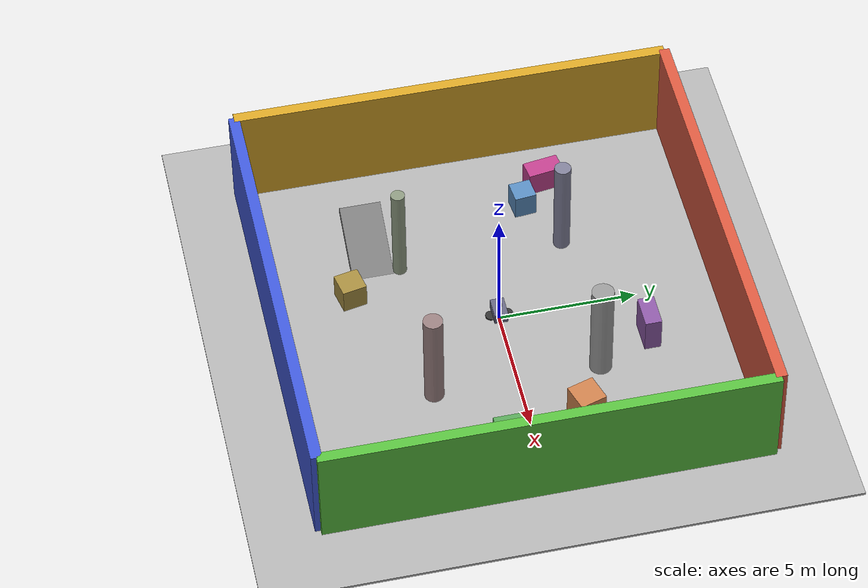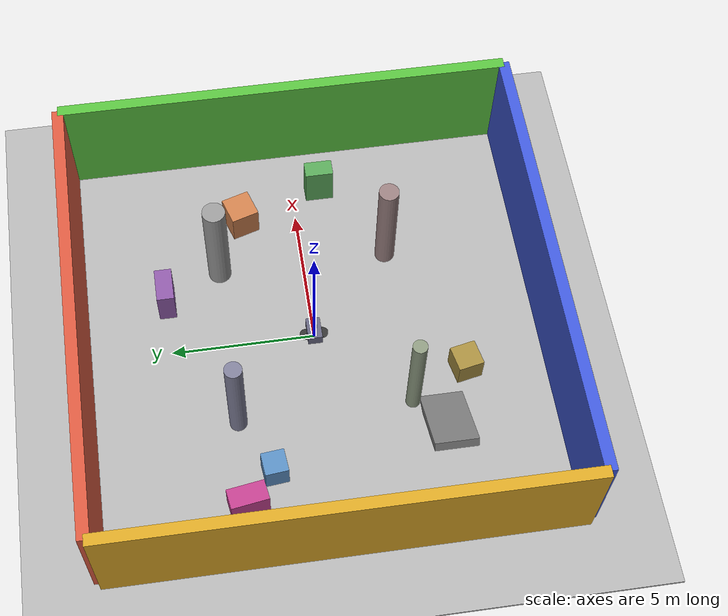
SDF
<?xml version="1.0" ?>
<sdf version="1.6">
  <world name="fastlio_world">

    <!-- ====== DART 真实物理 ====== -->
    <physics name="1ms" type="dart">
      <max_step_size>0.001</max_step_size>
      <real_time_factor>1.0</real_time_factor>
      <real_time_update_rate>1000</real_time_update_rate>
      <dart>
        <solver_type>dantzig</solver_type>
      </dart>
    </physics>

    <plugin filename="gz-sim-physics-system" name="gz::sim::systems::Physics"/>
    <plugin filename="gz-sim-sensors-system" name="gz::sim::systems::Sensors">
      <render_engine>ogre2</render_engine>
    </plugin>
    <plugin filename="gz-sim-scene-broadcaster-system" name="gz::sim::systems::SceneBroadcaster"/>
    <plugin filename="gz-sim-user-commands-system" name="gz::sim::systems::UserCommands"/>
    <plugin filename="gz-sim-imu-system" name="gz::sim::systems::Imu"/>

    <light type="directional" name="sun">
      <cast_shadows>true</cast_shadows>
      <pose>0 0 10 0 0 0</pose>
      <diffuse>0.9 0.9 0.9</diffuse>
      <direction>-0.5 0.1 -0.9</direction>
    </light>

    <!-- ====== 地面 ====== -->
    <model name="ground_plane">
      <static>true</static>
      <link name="link">
        <collision name="c"><geometry><box><size>60 60 0.1</size></box></geometry></collision>
        <visual name="v"><geometry><box><size>60 60 0.1</size></box></geometry>
          <material><ambient>0.6 0.6 0.6</ambient><diffuse>0.7 0.7 0.7</diffuse></material></visual>
      </link>
    </model>

    <!-- ====== 四面围墙 (10m×10m 场景) ====== -->
    <model name="wall_n"><static>true</static><pose>0 8 2 0 0 0</pose>
      <link name="l"><collision name="c"><geometry><box><size>16 0.4 4</size></box></geometry></collision>
        <visual name="v"><geometry><box><size>16 0.4 4</size></box></geometry>
          <material><ambient>0.8 0.3 0.2</ambient><diffuse>0.85 0.35 0.25</diffuse></material></visual></link></model>
    <model name="wall_s"><static>true</static><pose>0 -8 2 0 0 0</pose>
      <link name="l"><collision name="c"><geometry><box><size>16 0.4 4</size></box></geometry></collision>
        <visual name="v"><geometry><box><size>16 0.4 4</size></box></geometry>
          <material><ambient>0.2 0.3 0.8</ambient><diffuse>0.25 0.35 0.85</diffuse></material></visual></link></model>
    <model name="wall_e"><static>true</static><pose>8 0 2 0 0 1.57</pose>
      <link name="l"><collision name="c"><geometry><box><size>16 0.4 4</size></box></geometry></collision>
        <visual name="v"><geometry><box><size>16 0.4 4</size></box></geometry>
          <material><ambient>0.3 0.7 0.2</ambient><diffuse>0.35 0.75 0.25</diffuse></material></visual></link></model>
    <model name="wall_w"><static>true</static><pose>-8 0 2 0 0 1.57</pose>
      <link name="l"><collision name="c"><geometry><box><size>16 0.4 4</size></box></geometry></collision>
        <visual name="v"><geometry><box><size>16 0.4 4</size></box></geometry>
          <material><ambient>0.8 0.6 0.1</ambient><diffuse>0.85 0.65 0.15</diffuse></material></visual></link></model>

    <!-- ====== 内部障碍物 (4柱 + 6方块 + 1斜坡) ====== -->
    <model name="pillar_1"><static>true</static><pose>3 3 2 0 0 0</pose>
      <link name="l"><collision name="c"><geometry><cylinder><radius>0.4</radius><length>4</length></cylinder></geometry></collision>
        <visual name="v"><geometry><cylinder><radius>0.4</radius><length>4</length></cylinder></geometry>
          <material><ambient>0.5 0.5 0.5</ambient><diffuse>0.6 0.6 0.6</diffuse></material></visual></link></model>
    <model name="pillar_2"><static>true</static><pose>-3 3 2 0 0 0</pose>
      <link name="l"><collision name="c"><geometry><cylinder><radius>0.3</radius><length>4</length></cylinder></geometry></collision>
        <visual name="v"><geometry><cylinder><radius>0.3</radius><length>4</length></cylinder></geometry>
          <material><ambient>0.4 0.4 0.5</ambient><diffuse>0.5 0.5 0.6</diffuse></material></visual></link></model>
    <model name="pillar_3"><static>true</static><pose>3 -3 2 0 0 0</pose>
      <link name="l"><collision name="c"><geometry><cylinder><radius>0.35</radius><length>4</length></cylinder></geometry></collision>
        <visual name="v"><geometry><cylinder><radius>0.35</radius><length>4</length></cylinder></geometry>
          <material><ambient>0.5 0.4 0.4</ambient><diffuse>0.6 0.5 0.5</diffuse></material></visual></link></model>
    <model name="pillar_4"><static>true</static><pose>-3 -3 2 0 0 0</pose>
      <link name="l"><collision name="c"><geometry><cylinder><radius>0.25</radius><length>4</length></cylinder></geometry></collision>
        <visual name="v"><geometry><cylinder><radius>0.25</radius><length>4</length></cylinder></geometry>
          <material><ambient>0.45 0.5 0.4</ambient><diffuse>0.55 0.6 0.5</diffuse></material></visual></link></model>

    <model name="box_1"><static>true</static><pose>5 2 0.6 0 0 0.3</pose>
      <link name="l"><collision name="c"><geometry><box><size>1 1 1.2</size></box></geometry></collision>
        <visual name="v"><geometry><box><size>1 1 1.2</size></box></geometry>
          <material><ambient>0.7 0.4 0.2</ambient><diffuse>0.8 0.5 0.3</diffuse></material></visual></link></model>
    <model name="box_2"><static>true</static><pose>-5 2 0.5 0 0 0.1</pose>
      <link name="l"><collision name="c"><geometry><box><size>0.8 0.8 1</size></box></geometry></collision>
        <visual name="v"><geometry><box><size>0.8 0.8 1</size></box></geometry>
          <material><ambient>0.3 0.5 0.7</ambient><diffuse>0.35 0.55 0.75</diffuse></material></visual></link></model>
    <model name="box_3"><static>true</static><pose>2 5 0.7 0 0 0</pose>
      <link name="l"><collision name="c"><geometry><box><size>1.2 0.6 1.4</size></box></geometry></collision>
        <visual name="v"><geometry><box><size>1.2 0.6 1.4</size></box></geometry>
          <material><ambient>0.5 0.3 0.6</ambient><diffuse>0.55 0.35 0.65</diffuse></material></visual></link></model>
    <model name="box_4"><static>true</static><pose>-2 -5 0.5 0 0 0.2</pose>
      <link name="l"><collision name="c"><geometry><box><size>0.9 0.9 1</size></box></geometry></collision>
        <visual name="v"><geometry><box><size>0.9 0.9 1</size></box></geometry>
          <material><ambient>0.6 0.5 0.2</ambient><diffuse>0.65 0.55 0.25</diffuse></material></visual></link></model>
    <model name="box_5"><static>true</static><pose>6 -1 0.8 0 0 0</pose>
      <link name="l"><collision name="c"><geometry><box><size>0.6 1.0 1.6</size></box></geometry></collision>
        <visual name="v"><geometry><box><size>0.6 1.0 1.6</size></box></geometry>
          <material><ambient>0.3 0.6 0.3</ambient><diffuse>0.35 0.65 0.35</diffuse></material></visual></link></model>
    <model name="box_6"><static>true</static><pose>-6 3 0.5 0 0 0.15</pose>
      <link name="l"><collision name="c"><geometry><box><size>0.7 1.3 1</size></box></geometry></collision>
        <visual name="v"><geometry><box><size>0.7 1.3 1</size></box></geometry>
          <material><ambient>0.7 0.2 0.5</ambient><diffuse>0.75 0.25 0.55</diffuse></material></visual></link></model>

    <model name="ramp"><static>true</static><pose>-4 -4 0.5 0 0.5 0</pose>
      <link name="l"><collision name="c"><geometry><box><size>3 1.5 0.3</size></box></geometry></collision>
        <visual name="v"><geometry><box><size>3 1.5 0.3</size></box></geometry>
          <material><ambient>0.4 0.4 0.4</ambient><diffuse>0.5 0.5 0.5</diffuse></material></visual></link></model>

    <model name="sensor_cart">
      <pose>0 0 0.4 0 0 0</pose>

      <!-- ====== 底盘 ====== -->
      <link name="chassis">
        <inertial><mass>5.0</mass>
          <inertia><ixx>1.0</ixx><ixy>0</ixy><ixz>0</ixz><iyy>1.0</iyy><iyz>0</iyz><izz>1.0</izz></inertia>
        </inertial>
        <collision name="c"><geometry><box><size>0.8 0.5 0.4</size></box></geometry>
          <surface><friction><ode><mu>1.0</mu><mu2>1.0</mu2></ode></friction></surface>
        </collision>
        <visual name="v"><geometry><box><size>0.8 0.5 0.4</size></box></geometry>
          <material><ambient>0.3 0.3 0.35</ambient><diffuse>0.4 0.4 0.5</diffuse></material>
        </visual>

        <!-- IMU 传感器 (在底盘中心) -->
        <sensor name="imu" type="imu">
          <topic>/imu0</topic>
          <always_on>1</always_on>
          <update_rate>400</update_rate>
        </sensor>

        <!-- 3D LiDAR 传感器 (VLP-16 参数, 安装在顶板上) -->
        <sensor name="lidar" type="gpu_lidar">
          <topic>/lidar0</topic>
          <update_rate>10</update_rate>
          <pose>0 0 0.3 0 0 0</pose>
          <lidar>
            <scan>
              <horizontal>
                <samples>1800</samples>
                <resolution>1</resolution>
                <min_angle>-3.14159</min_angle>
                <max_angle>3.14159</max_angle>
              </horizontal>
              <vertical>
                <samples>16</samples>
                <resolution>1</resolution>
                <min_angle>-0.261799</min_angle>
                <max_angle>0.261799</max_angle>
              </vertical>
            </scan>
            <range>
              <min>0.5</min>
              <max>50.0</max>
              <resolution>0.02</resolution>
            </range>
            <noise>
              <type>gaussian</type>
              <mean>0</mean>
              <stddev>0.02</stddev>
            </noise>
          </lidar>
          <always_on>1</always_on>
          <visualize>true</visualize>
        </sensor>
      </link>

      <!-- ====== LiDAR 外观 (圆柱体在顶上) ====== -->
      <link name="lidar_vis">
        <pose>0 0 0.3 0 0 0</pose>
        <visual name="v"><geometry><cylinder><radius>0.1</radius><length>0.08</length></cylinder></geometry>
          <material><ambient>0.1 0.1 0.1</ambient><diffuse>0.15 0.15 0.15</diffuse></material>
        </visual>
        <inertial><mass>0.01</mass><inertia><ixx>0.0001</ixx><iyy>0.0001</iyy><izz>0.0001</izz></inertia></inertial>
      </link>
      <joint name="lidar_vis_joint" type="fixed">
        <parent>chassis</parent><child>lidar_vis</child>
      </joint>

      <!-- ====== IMU 外观标记 (小蓝块) ====== -->
      <link name="imu_vis">
        <pose>0.2 0 -0.05 0 0 0</pose>
        <visual name="v"><geometry><box><size>0.08 0.06 0.04</size></box></geometry>
          <material><ambient>0.1 0.3 0.9</ambient><diffuse>0.1 0.4 1.0</diffuse></material>
        </visual>
        <inertial><mass>0.001</mass><inertia><ixx>0.00001</ixx><iyy>0.00001</iyy><izz>0.00001</izz></inertia></inertial>
      </link>
      <joint name="imu_vis_joint" type="fixed">
        <parent>chassis</parent><child>imu_vis</child>
      </joint>

      <!-- ====== 差速驱动 ====== -->
      <plugin filename="gz-sim-diff-drive-system" name="gz::sim::systems::DiffDrive">
        <left_joint>left_wheel_joint</left_joint>
        <right_joint>right_wheel_joint</right_joint>
        <wheel_separation>0.6</wheel_separation>
        <wheel_radius>0.2</wheel_radius>
        <odom_publish_frequency>50</odom_publish_frequency>
        <topic>/cmd_vel</topic>
      </plugin>

      <!-- ====== 左轮 ====== -->
      <link name="left_wheel">
        <pose>0 -0.3 -0.2 0 0 0</pose>
        <inertial><mass>0.5</mass><inertia><ixx>0.005</ixx><iyy>0.005</iyy><izz>0.005</izz></inertia></inertial>
        <collision name="c"><geometry><cylinder><radius>0.2</radius><length>0.06</length></cylinder></geometry>
          <surface><friction><ode><mu>10.0</mu><mu2>10.0</mu2></ode></friction></surface>
        </collision>
        <visual name="v"><geometry><cylinder><radius>0.2</radius><length>0.06</length></cylinder></geometry>
          <material><ambient>0.15 0.15 0.15</ambient><diffuse>0.2 0.2 0.2</diffuse></material>
        </visual>
      </link>
      <joint name="left_wheel_joint" type="revolute">
        <parent>chassis</parent><child>left_wheel</child>
        <axis><xyz>0 1 0</xyz></axis>
      </joint>

      <!-- ====== 右轮 ====== -->
      <link name="right_wheel">
        <pose>0 0.3 -0.2 0 0 0</pose>
        <inertial><mass>0.5</mass><inertia><ixx>0.005</ixx><iyy>0.005</iyy><izz>0.005</izz></inertia></inertial>
        <collision name="c"><geometry><cylinder><radius>0.2</radius><length>0.06</length></cylinder></geometry>
          <surface><friction><ode><mu>10.0</mu><mu2>10.0</mu2></ode></friction></surface>
        </collision>
        <visual name="v"><geometry><cylinder><radius>0.2</radius><length>0.06</length></cylinder></geometry>
          <material><ambient>0.15 0.15 0.15</ambient><diffuse>0.2 0.2 0.2</diffuse></material>
        </visual>
      </link>
      <joint name="right_wheel_joint" type="revolute">
        <parent>chassis</parent><child>right_wheel</child>
        <axis><xyz>0 1 0</xyz></axis>
      </joint>

      <!-- ====== 前支撑轮 (万向轮) ====== -->
      <link name="caster">
        <pose>0.35 0 -0.25 0 0 0</pose>
        <collision name="c"><geometry><sphere><radius>0.06</radius></sphere></geometry>
          <surface><friction><ode><mu>0.01</mu><mu2>0.01</mu2></ode></friction></surface>
        </collision>
        <visual name="v"><geometry><sphere><radius>0.06</radius></sphere></geometry>
          <material><ambient>0.1 0.1 0.1</ambient><diffuse>0.15 0.15 0.15</diffuse></material>
        </visual>
        <inertial><mass>0.01</mass><inertia><ixx>0.0001</ixx><iyy>0.0001</iyy><izz>0.0001</izz></inertia></inertial>
      </link>
      <joint name="caster_joint" type="ball">
        <parent>chassis</parent><child>caster</child>
      </joint>
    </model>

  </world>
</sdf>
